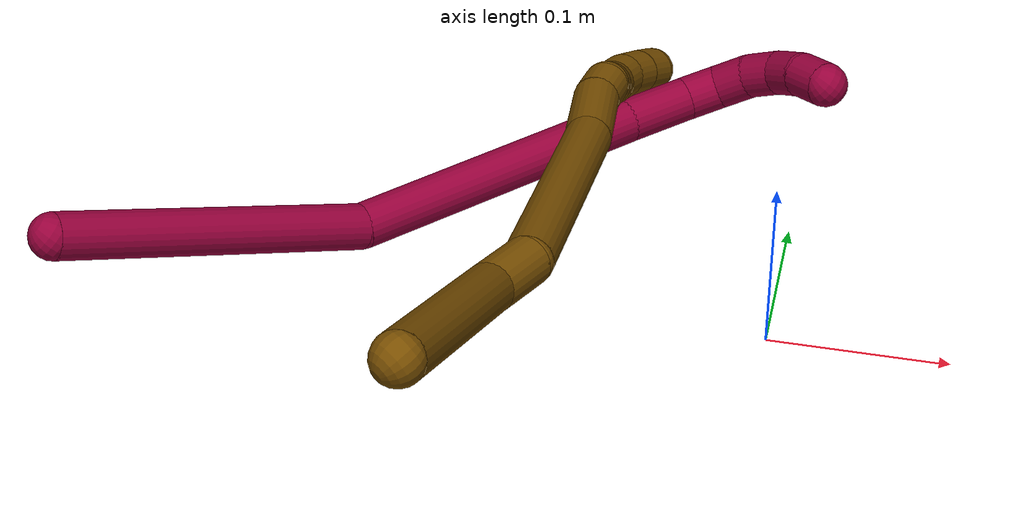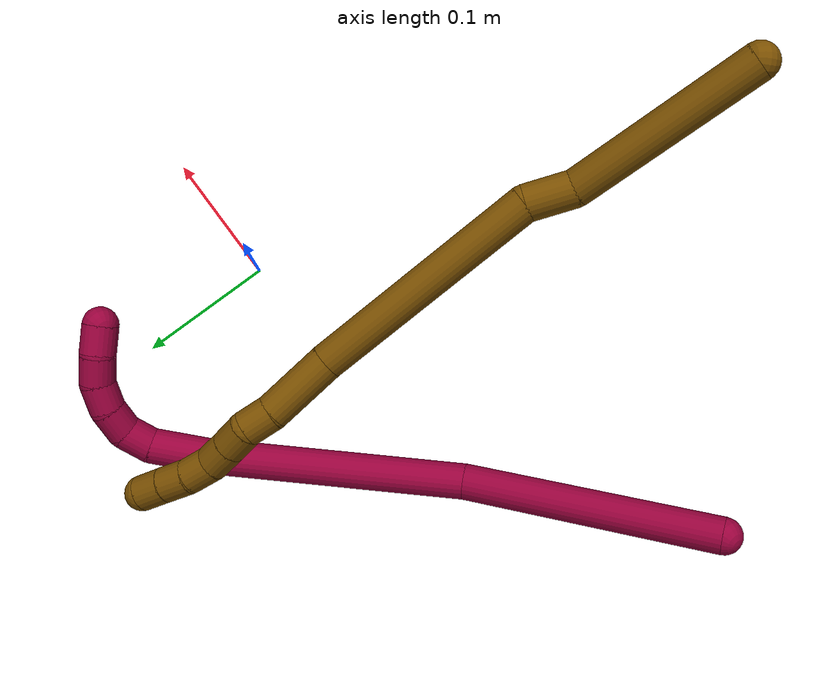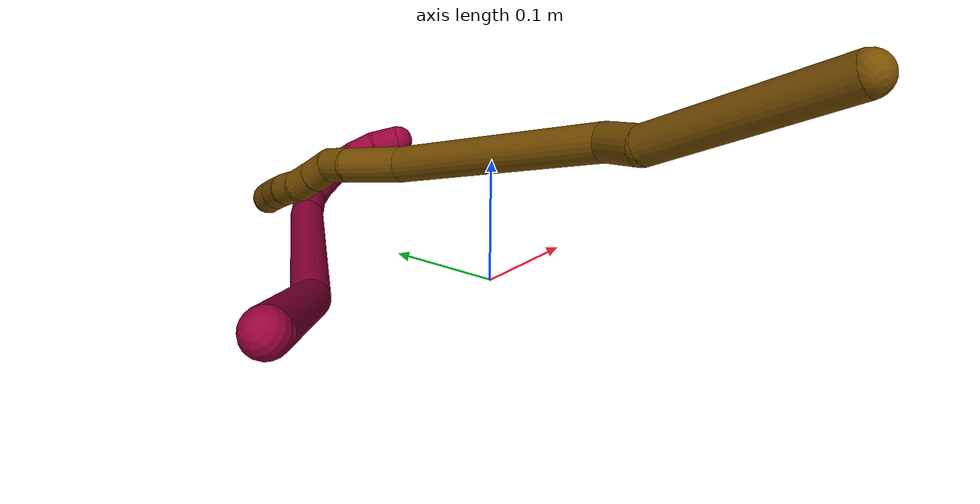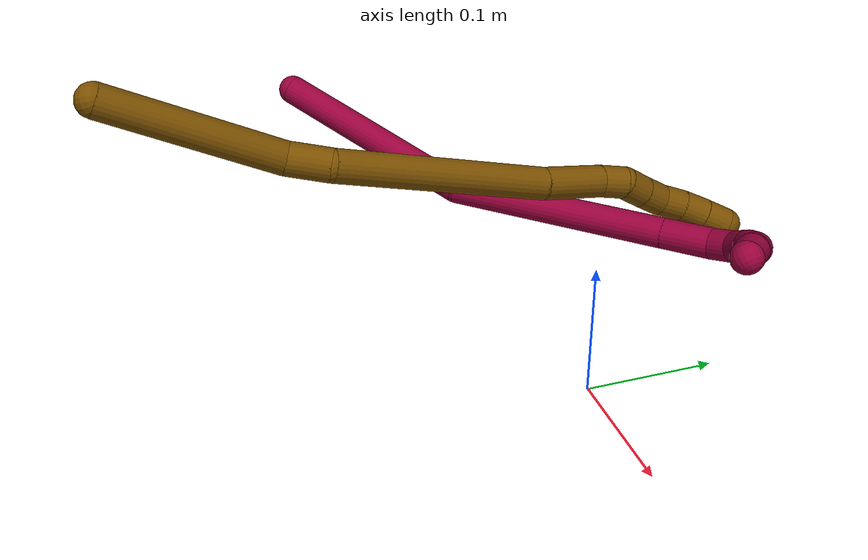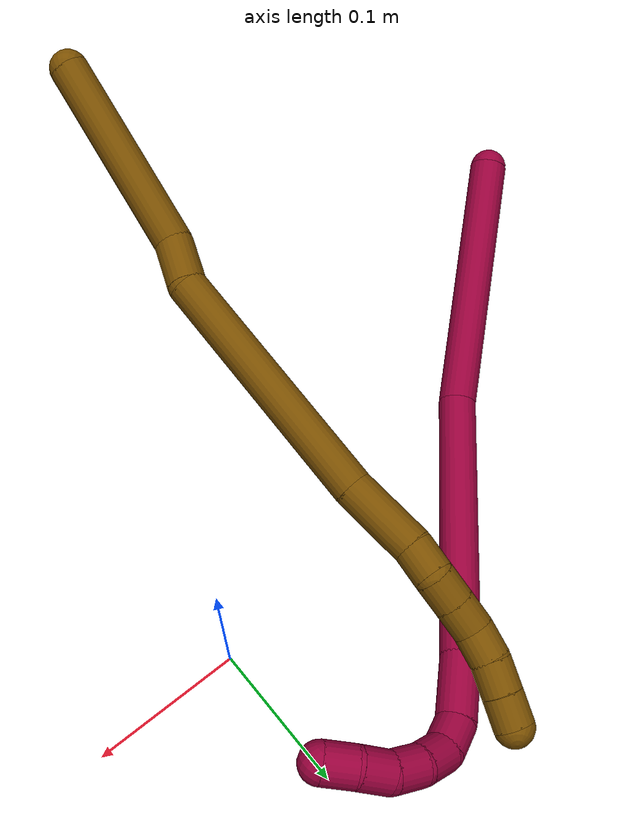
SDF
<sdf version="1.7">
 <world name="default">
  <model name="8">
   <static>0</static>
   <link name="8">
    <collision name="collision-cylinder-e_1_1_4">
     <pose>0.021893 0.045346 -0.073077 -2.58622 0.249268 -0.82819</pose>
     <geometry><cylinder><radius>0.0125</radius><length>0.177492</length></cylinder></geometry>
     <surface>
      <friction><ode><mu>1.16</mu><mu2>1.16</mu2><slip1>0</slip1><slip2>0</slip2></ode></friction>
      <contact><ode><kp>1e+06</kp><kd>1</kd><max_vel>0</max_vel><min_depth>0.001</min_depth></ode></contact>
     </surface>
    </collision>
    <visual name="visual-cylinder-e_1_1_4">
     <pose>0.021893 0.045346 -0.073077 -2.58622 0.249268 -0.82819</pose>
     <geometry><cylinder><radius>0.0125</radius><length>0.177492</length></cylinder></geometry>
     <material><ambient>0.584314 0 0.227451 1</ambient></material>
    </visual>
    <collision name="collision-cylinder-e_2_4_5">
     <pose>0.082756 0.149982 -0.201282 -2.31984 0.448616 -0.964797</pose>
     <geometry><cylinder><radius>0.0125</radius><length>0.1797</length></cylinder></geometry>
     <surface>
      <friction><ode><mu>1.16</mu><mu2>1.16</mu2><slip1>0</slip1><slip2>0</slip2></ode></friction>
      <contact><ode><kp>1e+06</kp><kd>1</kd><max_vel>0</max_vel><min_depth>0.001</min_depth></ode></contact>
     </surface>
    </collision>
    <visual name="visual-cylinder-e_2_4_5">
     <pose>0.082756 0.149982 -0.201282 -2.31984 0.448616 -0.964797</pose>
     <geometry><cylinder><radius>0.0125</radius><length>0.1797</length></cylinder></geometry>
     <material><ambient>0.584314 0 0.227451 1</ambient></material>
    </visual>
    <collision name="collision-cylinder-e_3_5_6">
     <pose>0.131998 0.22154 -0.268895 -2.36499 0.530705 -1.17277</pose>
     <geometry><cylinder><radius>0.0125</radius><length>0.040589</length></cylinder></geometry>
     <surface>
      <friction><ode><mu>1.16</mu><mu2>1.16</mu2><slip1>0</slip1><slip2>0</slip2></ode></friction>
      <contact><ode><kp>1e+06</kp><kd>1</kd><max_vel>0</max_vel><min_depth>0.001</min_depth></ode></contact>
     </surface>
    </collision>
    <visual name="visual-cylinder-e_3_5_6">
     <pose>0.131998 0.22154 -0.268895 -2.36499 0.530705 -1.17277</pose>
     <geometry><cylinder><radius>0.0125</radius><length>0.040589</length></cylinder></geometry>
     <material><ambient>0.584314 0 0.227451 1</ambient></material>
    </visual>
    <collision name="collision-cylinder-e_4_6_7">
     <pose>0.150415 0.237264 -0.286826 -2.57602 0.900976 -2.0596</pose>
     <geometry><cylinder><radius>0.0125</radius><length>0.020781</length></cylinder></geometry>
     <surface>
      <friction><ode><mu>1.16</mu><mu2>1.16</mu2><slip1>0</slip1><slip2>0</slip2></ode></friction>
      <contact><ode><kp>1e+06</kp><kd>1</kd><max_vel>0</max_vel><min_depth>0.001</min_depth></ode></contact>
     </surface>
    </collision>
    <visual name="visual-cylinder-e_4_6_7">
     <pose>0.150415 0.237264 -0.286826 -2.57602 0.900976 -2.0596</pose>
     <geometry><cylinder><radius>0.0125</radius><length>0.020781</length></cylinder></geometry>
     <material><ambient>0.584314 0 0.227451 1</ambient></material>
    </visual>
    <collision name="collision-cylinder-e_5_7_8">
     <pose>0.168508 0.239915 -0.295149 2.86839 1.27909 2.77613</pose>
     <geometry><cylinder><radius>0.0125</radius><length>0.020773</length></cylinder></geometry>
     <surface>
      <friction><ode><mu>1.16</mu><mu2>1.16</mu2><slip1>0</slip1><slip2>0</slip2></ode></friction>
      <contact><ode><kp>1e+06</kp><kd>1</kd><max_vel>0</max_vel><min_depth>0.001</min_depth></ode></contact>
     </surface>
    </collision>
    <visual name="visual-cylinder-e_5_7_8">
     <pose>0.168508 0.239915 -0.295149 2.86839 1.27909 2.77613</pose>
     <geometry><cylinder><radius>0.0125</radius><length>0.020773</length></cylinder></geometry>
     <material><ambient>0.584314 0 0.227451 1</ambient></material>
    </visual>
    <collision name="collision-cylinder-e_6_8_9">
     <pose>0.187407 0.235715 -0.301042 2.29742 1.10134 1.87866</pose>
     <geometry><cylinder><radius>0.0125</radius><length>0.020074</length></cylinder></geometry>
     <surface>
      <friction><ode><mu>1.16</mu><mu2>1.16</mu2><slip1>0</slip1><slip2>0</slip2></ode></friction>
      <contact><ode><kp>1e+06</kp><kd>1</kd><max_vel>0</max_vel><min_depth>0.001</min_depth></ode></contact>
     </surface>
    </collision>
    <visual name="visual-cylinder-e_6_8_9">
     <pose>0.187407 0.235715 -0.301042 2.29742 1.10134 1.87866</pose>
     <geometry><cylinder><radius>0.0125</radius><length>0.020074</length></cylinder></geometry>
     <material><ambient>0.584314 0 0.227451 1</ambient></material>
    </visual>
    <collision name="collision-cylinder-e_7_9_10">
     <pose>0.20406 0.226037 -0.305303 1.76623 0.876958 1.03743</pose>
     <geometry><cylinder><radius>0.0125</radius><length>0.020036</length></cylinder></geometry>
     <surface>
      <friction><ode><mu>1.16</mu><mu2>1.16</mu2><slip1>0</slip1><slip2>0</slip2></ode></friction>
      <contact><ode><kp>1e+06</kp><kd>1</kd><max_vel>0</max_vel><min_depth>0.001</min_depth></ode></contact>
     </surface>
    </collision>
    <visual name="visual-cylinder-e_7_9_10">
     <pose>0.20406 0.226037 -0.305303 1.76623 0.876958 1.03743</pose>
     <geometry><cylinder><radius>0.0125</radius><length>0.020036</length></cylinder></geometry>
     <material><ambient>0.584314 0 0.227451 1</ambient></material>
    </visual>
    <collision name="collision-cylinder-e_8_10_2">
     <pose>0.218289 0.212353 -0.309424 1.94162 0.68815 0.964981</pose>
     <geometry><cylinder><radius>0.0125</radius><length>0.020554</length></cylinder></geometry>
     <surface>
      <friction><ode><mu>1.16</mu><mu2>1.16</mu2><slip1>0</slip1><slip2>0</slip2></ode></friction>
      <contact><ode><kp>1e+06</kp><kd>1</kd><max_vel>0</max_vel><min_depth>0.001</min_depth></ode></contact>
     </surface>
    </collision>
    <visual name="visual-cylinder-e_8_10_2">
     <pose>0.218289 0.212353 -0.309424 1.94162 0.68815 0.964981</pose>
     <geometry><cylinder><radius>0.0125</radius><length>0.020554</length></cylinder></geometry>
     <material><ambient>0.584314 0 0.227451 1</ambient></material>
    </visual>
    <collision name="collision-sphere-2">
     <pose>0.224816 0.204955 -0.3123 0 -0 0</pose>
     <geometry><sphere><radius>0.0125</radius></sphere></geometry>
     <surface>
      <friction><ode><mu>1.16</mu><mu2>1.16</mu2><slip1>0</slip1><slip2>0</slip2></ode></friction>
      <contact><ode><kp>1e+06</kp><kd>1</kd><max_vel>0</max_vel><min_depth>0.001</min_depth></ode></contact>
     </surface>
    </collision>
    <visual name="visual-sphere-2">
     <pose>0.224816 0.204955 -0.3123 0 -0 0</pose>
     <geometry><sphere><radius>0.0125</radius></sphere></geometry>
     <material><ambient>0.584314 0 0.227451 1</ambient></material>
    </visual>
    <collision name="collision-sphere-10">
     <pose>0.211762 0.219752 -0.306547 0 -0 0</pose>
     <geometry><sphere><radius>0.0125</radius></sphere></geometry>
     <surface>
      <friction><ode><mu>1.16</mu><mu2>1.16</mu2><slip1>0</slip1><slip2>0</slip2></ode></friction>
      <contact><ode><kp>1e+06</kp><kd>1</kd><max_vel>0</max_vel><min_depth>0.001</min_depth></ode></contact>
     </surface>
    </collision>
    <visual name="visual-sphere-10">
     <pose>0.211762 0.219752 -0.306547 0 -0 0</pose>
     <geometry><sphere><radius>0.0125</radius></sphere></geometry>
     <material><ambient>0.584314 0 0.227451 1</ambient></material>
    </visual>
    <collision name="collision-sphere-9">
     <pose>0.196358 0.232321 -0.304059 0 -0 0</pose>
     <geometry><sphere><radius>0.0125</radius></sphere></geometry>
     <surface>
      <friction><ode><mu>1.16</mu><mu2>1.16</mu2><slip1>0</slip1><slip2>0</slip2></ode></friction>
      <contact><ode><kp>1e+06</kp><kd>1</kd><max_vel>0</max_vel><min_depth>0.001</min_depth></ode></contact>
     </surface>
    </collision>
    <visual name="visual-sphere-9">
     <pose>0.196358 0.232321 -0.304059 0 -0 0</pose>
     <geometry><sphere><radius>0.0125</radius></sphere></geometry>
     <material><ambient>0.584314 0 0.227451 1</ambient></material>
    </visual>
    <collision name="collision-sphere-4">
     <pose>0.043786 0.090692 -0.146154 0 -0 0</pose>
     <geometry><sphere><radius>0.0125</radius></sphere></geometry>
     <surface>
      <friction><ode><mu>1.16</mu><mu2>1.16</mu2><slip1>0</slip1><slip2>0</slip2></ode></friction>
      <contact><ode><kp>1e+06</kp><kd>1</kd><max_vel>0</max_vel><min_depth>0.001</min_depth></ode></contact>
     </surface>
    </collision>
    <visual name="visual-sphere-4">
     <pose>0.043786 0.090692 -0.146154 0 -0 0</pose>
     <geometry><sphere><radius>0.0125</radius></sphere></geometry>
     <material><ambient>0.584314 0 0.227451 1</ambient></material>
    </visual>
    <collision name="collision-sphere-1">
     <geometry><sphere><radius>0.0125</radius></sphere></geometry>
     <surface>
      <friction><ode><mu>1.16</mu><mu2>1.16</mu2><slip1>0</slip1><slip2>0</slip2></ode></friction>
      <contact><ode><kp>1e+06</kp><kd>1</kd><max_vel>0</max_vel><min_depth>0.001</min_depth></ode></contact>
     </surface>
    </collision>
    <visual name="visual-sphere-1">
     <geometry><sphere><radius>0.0125</radius></sphere></geometry>
     <material><ambient>0.584314 0 0.227451 1</ambient></material>
    </visual>
    <collision name="collision-sphere-8">
     <pose>0.178456 0.239109 -0.298025 0 -0 0</pose>
     <geometry><sphere><radius>0.0125</radius></sphere></geometry>
     <surface>
      <friction><ode><mu>1.16</mu><mu2>1.16</mu2><slip1>0</slip1><slip2>0</slip2></ode></friction>
      <contact><ode><kp>1e+06</kp><kd>1</kd><max_vel>0</max_vel><min_depth>0.001</min_depth></ode></contact>
     </surface>
    </collision>
    <visual name="visual-sphere-8">
     <pose>0.178456 0.239109 -0.298025 0 -0 0</pose>
     <geometry><sphere><radius>0.0125</radius></sphere></geometry>
     <material><ambient>0.584314 0 0.227451 1</ambient></material>
    </visual>
    <collision name="collision-sphere-5">
     <pose>0.121726 0.209272 -0.25641 0 -0 0</pose>
     <geometry><sphere><radius>0.0125</radius></sphere></geometry>
     <surface>
      <friction><ode><mu>1.16</mu><mu2>1.16</mu2><slip1>0</slip1><slip2>0</slip2></ode></friction>
      <contact><ode><kp>1e+06</kp><kd>1</kd><max_vel>0</max_vel><min_depth>0.001</min_depth></ode></contact>
     </surface>
    </collision>
    <visual name="visual-sphere-5">
     <pose>0.121726 0.209272 -0.25641 0 -0 0</pose>
     <geometry><sphere><radius>0.0125</radius></sphere></geometry>
     <material><ambient>0.584314 0 0.227451 1</ambient></material>
    </visual>
    <collision name="collision-sphere-6">
     <pose>0.14227 0.233807 -0.28138 0 -0 0</pose>
     <geometry><sphere><radius>0.0125</radius></sphere></geometry>
     <surface>
      <friction><ode><mu>1.16</mu><mu2>1.16</mu2><slip1>0</slip1><slip2>0</slip2></ode></friction>
      <contact><ode><kp>1e+06</kp><kd>1</kd><max_vel>0</max_vel><min_depth>0.001</min_depth></ode></contact>
     </surface>
    </collision>
    <visual name="visual-sphere-6">
     <pose>0.14227 0.233807 -0.28138 0 -0 0</pose>
     <geometry><sphere><radius>0.0125</radius></sphere></geometry>
     <material><ambient>0.584314 0 0.227451 1</ambient></material>
    </visual>
    <collision name="collision-sphere-7">
     <pose>0.15856 0.240721 -0.292273 0 -0 0</pose>
     <geometry><sphere><radius>0.0125</radius></sphere></geometry>
     <surface>
      <friction><ode><mu>1.16</mu><mu2>1.16</mu2><slip1>0</slip1><slip2>0</slip2></ode></friction>
      <contact><ode><kp>1e+06</kp><kd>1</kd><max_vel>0</max_vel><min_depth>0.001</min_depth></ode></contact>
     </surface>
    </collision>
    <visual name="visual-sphere-7">
     <pose>0.15856 0.240721 -0.292273 0 -0 0</pose>
     <geometry><sphere><radius>0.0125</radius></sphere></geometry>
     <material><ambient>0.584314 0 0.227451 1</ambient></material>
    </visual>
    <inertial>
     <pose>0.086157 0.135065 -0.181334 0 -0 0</pose>
     <mass>0.5</mass>
     <inertia>
      <ixx>-0.000123</ixx>
      <ixy>0</ixy>
      <ixz>0</ixz>
      <iyy>-0.000972</iyy>
      <iyz>0</iyz>
      <izz>-0.000931</izz>
     </inertia>
    </inertial>
   </link>
   <pose>-0.345907 -0.136646 0.117884 0.158365 -0.828615 -0.013728</pose>
  </model>
  <model name="12">
   <static>0</static>
   <link name="12">
    <collision name="collision-cylinder-e_1_1_4">
     <pose>-0.004211 0.052694 -0.039688 -2.21633 -0.063741 0.127675</pose>
     <geometry><cylinder><radius>0.0125</radius><length>0.132204</length></cylinder></geometry>
     <surface>
      <friction><ode><mu>1.16</mu><mu2>1.16</mu2><slip1>0</slip1><slip2>0</slip2></ode></friction>
      <contact><ode><kp>1e+06</kp><kd>1</kd><max_vel>0</max_vel><min_depth>0.001</min_depth></ode></contact>
     </surface>
    </collision>
    <visual name="visual-cylinder-e_1_1_4">
     <pose>-0.004211 0.052694 -0.039688 -2.21633 -0.063741 0.127675</pose>
     <geometry><cylinder><radius>0.0125</radius><length>0.132204</length></cylinder></geometry>
     <material><ambient>0.466667 0.301961 0 1</ambient></material>
    </visual>
    <collision name="collision-cylinder-e_2_4_5">
     <pose>-0.009869 0.11372 -0.09344 -2.60676 -0.088323 0.319831</pose>
     <geometry><cylinder><radius>0.0125</radius><length>0.032823</length></cylinder></geometry>
     <surface>
      <friction><ode><mu>1.16</mu><mu2>1.16</mu2><slip1>0</slip1><slip2>0</slip2></ode></friction>
      <contact><ode><kp>1e+06</kp><kd>1</kd><max_vel>0</max_vel><min_depth>0.001</min_depth></ode></contact>
     </surface>
    </collision>
    <visual name="visual-cylinder-e_2_4_5">
     <pose>-0.009869 0.11372 -0.09344 -2.60676 -0.088323 0.319831</pose>
     <geometry><cylinder><radius>0.0125</radius><length>0.032823</length></cylinder></geometry>
     <material><ambient>0.466667 0.301961 0 1</ambient></material>
    </visual>
    <collision name="collision-cylinder-e_3_5_6">
     <pose>-0.000838 0.183654 -0.160973 -2.28563 0.127756 -0.278619</pose>
     <geometry><cylinder><radius>0.0125</radius><length>0.16448</length></cylinder></geometry>
     <surface>
      <friction><ode><mu>1.16</mu><mu2>1.16</mu2><slip1>0</slip1><slip2>0</slip2></ode></friction>
      <contact><ode><kp>1e+06</kp><kd>1</kd><max_vel>0</max_vel><min_depth>0.001</min_depth></ode></contact>
     </surface>
    </collision>
    <visual name="visual-cylinder-e_3_5_6">
     <pose>-0.000838 0.183654 -0.160973 -2.28563 0.127756 -0.278619</pose>
     <geometry><cylinder><radius>0.0125</radius><length>0.16448</length></cylinder></geometry>
     <material><ambient>0.466667 0.301961 0 1</ambient></material>
    </visual>
    <collision name="collision-cylinder-e_4_6_7">
     <pose>0.015732 0.263328 -0.230295 -2.29091 0.248179 -0.537377</pose>
     <geometry><cylinder><radius>0.0125</radius><length>0.049601</length></cylinder></geometry>
     <surface>
      <friction><ode><mu>1.16</mu><mu2>1.16</mu2><slip1>0</slip1><slip2>0</slip2></ode></friction>
      <contact><ode><kp>1e+06</kp><kd>1</kd><max_vel>0</max_vel><min_depth>0.001</min_depth></ode></contact>
     </surface>
    </collision>
    <visual name="visual-cylinder-e_4_6_7">
     <pose>0.015732 0.263328 -0.230295 -2.29091 0.248179 -0.537377</pose>
     <geometry><cylinder><radius>0.0125</radius><length>0.049601</length></cylinder></geometry>
     <material><ambient>0.466667 0.301961 0 1</ambient></material>
    </visual>
    <collision name="collision-cylinder-e_5_7_8">
     <pose>0.022916 0.288407 -0.253763 -2.39773 0.1052 -0.268312</pose>
     <geometry><cylinder><radius>0.0125</radius><length>0.020811</length></cylinder></geometry>
     <surface>
      <friction><ode><mu>1.16</mu><mu2>1.16</mu2><slip1>0</slip1><slip2>0</slip2></ode></friction>
      <contact><ode><kp>1e+06</kp><kd>1</kd><max_vel>0</max_vel><min_depth>0.001</min_depth></ode></contact>
     </surface>
    </collision>
    <visual name="visual-cylinder-e_5_7_8">
     <pose>0.022916 0.288407 -0.253763 -2.39773 0.1052 -0.268312</pose>
     <geometry><cylinder><radius>0.0125</radius><length>0.020811</length></cylinder></geometry>
     <material><ambient>0.466667 0.301961 0 1</ambient></material>
    </visual>
    <collision name="collision-cylinder-e_6_8_9">
     <pose>0.023377 0.304505 -0.265525 -1.99877 -0.063192 0.098237</pose>
     <geometry><cylinder><radius>0.0125</radius><length>0.020024</length></cylinder></geometry>
     <surface>
      <friction><ode><mu>1.16</mu><mu2>1.16</mu2><slip1>0</slip1><slip2>0</slip2></ode></friction>
      <contact><ode><kp>1e+06</kp><kd>1</kd><max_vel>0</max_vel><min_depth>0.001</min_depth></ode></contact>
     </surface>
    </collision>
    <visual name="visual-cylinder-e_6_8_9">
     <pose>0.023377 0.304505 -0.265525 -1.99877 -0.063192 0.098237</pose>
     <geometry><cylinder><radius>0.0125</radius><length>0.020024</length></cylinder></geometry>
     <material><ambient>0.466667 0.301961 0 1</ambient></material>
    </visual>
    <collision name="collision-cylinder-e_7_9_10">
     <pose>0.022175 0.322544 -0.274146 -2.03442 -0.0569 0.092023</pose>
     <geometry><cylinder><radius>0.0125</radius><length>0.020041</length></cylinder></geometry>
     <surface>
      <friction><ode><mu>1.16</mu><mu2>1.16</mu2><slip1>0</slip1><slip2>0</slip2></ode></friction>
      <contact><ode><kp>1e+06</kp><kd>1</kd><max_vel>0</max_vel><min_depth>0.001</min_depth></ode></contact>
     </surface>
    </collision>
    <visual name="visual-cylinder-e_7_9_10">
     <pose>0.022175 0.322544 -0.274146 -2.03442 -0.0569 0.092023</pose>
     <geometry><cylinder><radius>0.0125</radius><length>0.020041</length></cylinder></geometry>
     <material><ambient>0.466667 0.301961 0 1</ambient></material>
    </visual>
    <collision name="collision-cylinder-e_8_10_11">
     <pose>0.021007 0.338852 -0.285375 -2.3134 -0.059786 0.13586</pose>
     <geometry><cylinder><radius>0.0125</radius><length>0.020017</length></cylinder></geometry>
     <surface>
      <friction><ode><mu>1.16</mu><mu2>1.16</mu2><slip1>0</slip1><slip2>0</slip2></ode></friction>
      <contact><ode><kp>1e+06</kp><kd>1</kd><max_vel>0</max_vel><min_depth>0.001</min_depth></ode></contact>
     </surface>
    </collision>
    <visual name="visual-cylinder-e_8_10_11">
     <pose>0.021007 0.338852 -0.285375 -2.3134 -0.059786 0.13586</pose>
     <geometry><cylinder><radius>0.0125</radius><length>0.020017</length></cylinder></geometry>
     <material><ambient>0.466667 0.301961 0 1</ambient></material>
    </visual>
    <collision name="collision-cylinder-e_9_11_12">
     <pose>0.018282 0.352991 -0.299168 -2.37484 -0.214272 0.52117</pose>
     <geometry><cylinder><radius>0.0125</radius><length>0.02</length></cylinder></geometry>
     <surface>
      <friction><ode><mu>1.16</mu><mu2>1.16</mu2><slip1>0</slip1><slip2>0</slip2></ode></friction>
      <contact><ode><kp>1e+06</kp><kd>1</kd><max_vel>0</max_vel><min_depth>0.001</min_depth></ode></contact>
     </surface>
    </collision>
    <visual name="visual-cylinder-e_9_11_12">
     <pose>0.018282 0.352991 -0.299168 -2.37484 -0.214272 0.52117</pose>
     <geometry><cylinder><radius>0.0125</radius><length>0.02</length></cylinder></geometry>
     <material><ambient>0.466667 0.301961 0 1</ambient></material>
    </visual>
    <collision name="collision-cylinder-e_10_12_2">
     <pose>0.013838 0.366752 -0.312979 -2.34109 -0.233937 0.541808</pose>
     <geometry><cylinder><radius>0.0125</radius><length>0.02</length></cylinder></geometry>
     <surface>
      <friction><ode><mu>1.16</mu><mu2>1.16</mu2><slip1>0</slip1><slip2>0</slip2></ode></friction>
      <contact><ode><kp>1e+06</kp><kd>1</kd><max_vel>0</max_vel><min_depth>0.001</min_depth></ode></contact>
     </surface>
    </collision>
    <visual name="visual-cylinder-e_10_12_2">
     <pose>0.013838 0.366752 -0.312979 -2.34109 -0.233937 0.541808</pose>
     <geometry><cylinder><radius>0.0125</radius><length>0.02</length></cylinder></geometry>
     <material><ambient>0.466667 0.301961 0 1</ambient></material>
    </visual>
    <collision name="collision-sphere-2">
     <pose>0.01152 0.373733 -0.319752 0 -0 0</pose>
     <geometry><sphere><radius>0.0125</radius></sphere></geometry>
     <surface>
      <friction><ode><mu>1.16</mu><mu2>1.16</mu2><slip1>0</slip1><slip2>0</slip2></ode></friction>
      <contact><ode><kp>1e+06</kp><kd>1</kd><max_vel>0</max_vel><min_depth>0.001</min_depth></ode></contact>
     </surface>
    </collision>
    <visual name="visual-sphere-2">
     <pose>0.01152 0.373733 -0.319752 0 -0 0</pose>
     <geometry><sphere><radius>0.0125</radius></sphere></geometry>
     <material><ambient>0.466667 0.301961 0 1</ambient></material>
    </visual>
    <collision name="collision-sphere-12">
     <pose>0.016156 0.35977 -0.306205 0 -0 0</pose>
     <geometry><sphere><radius>0.0125</radius></sphere></geometry>
     <surface>
      <friction><ode><mu>1.16</mu><mu2>1.16</mu2><slip1>0</slip1><slip2>0</slip2></ode></friction>
      <contact><ode><kp>1e+06</kp><kd>1</kd><max_vel>0</max_vel><min_depth>0.001</min_depth></ode></contact>
     </surface>
    </collision>
    <visual name="visual-sphere-12">
     <pose>0.016156 0.35977 -0.306205 0 -0 0</pose>
     <geometry><sphere><radius>0.0125</radius></sphere></geometry>
     <material><ambient>0.466667 0.301961 0 1</ambient></material>
    </visual>
    <collision name="collision-sphere-11">
     <pose>0.020409 0.346212 -0.292131 0 -0 0</pose>
     <geometry><sphere><radius>0.0125</radius></sphere></geometry>
     <surface>
      <friction><ode><mu>1.16</mu><mu2>1.16</mu2><slip1>0</slip1><slip2>0</slip2></ode></friction>
      <contact><ode><kp>1e+06</kp><kd>1</kd><max_vel>0</max_vel><min_depth>0.001</min_depth></ode></contact>
     </surface>
    </collision>
    <visual name="visual-sphere-11">
     <pose>0.020409 0.346212 -0.292131 0 -0 0</pose>
     <geometry><sphere><radius>0.0125</radius></sphere></geometry>
     <material><ambient>0.466667 0.301961 0 1</ambient></material>
    </visual>
    <collision name="collision-sphere-10">
     <pose>0.021605 0.331492 -0.27862 0 -0 0</pose>
     <geometry><sphere><radius>0.0125</radius></sphere></geometry>
     <surface>
      <friction><ode><mu>1.16</mu><mu2>1.16</mu2><slip1>0</slip1><slip2>0</slip2></ode></friction>
      <contact><ode><kp>1e+06</kp><kd>1</kd><max_vel>0</max_vel><min_depth>0.001</min_depth></ode></contact>
     </surface>
    </collision>
    <visual name="visual-sphere-10">
     <pose>0.021605 0.331492 -0.27862 0 -0 0</pose>
     <geometry><sphere><radius>0.0125</radius></sphere></geometry>
     <material><ambient>0.466667 0.301961 0 1</ambient></material>
    </visual>
    <collision name="collision-sphere-9">
     <pose>0.022744 0.313596 -0.269672 0 -0 0</pose>
     <geometry><sphere><radius>0.0125</radius></sphere></geometry>
     <surface>
      <friction><ode><mu>1.16</mu><mu2>1.16</mu2><slip1>0</slip1><slip2>0</slip2></ode></friction>
      <contact><ode><kp>1e+06</kp><kd>1</kd><max_vel>0</max_vel><min_depth>0.001</min_depth></ode></contact>
     </surface>
    </collision>
    <visual name="visual-sphere-9">
     <pose>0.022744 0.313596 -0.269672 0 -0 0</pose>
     <geometry><sphere><radius>0.0125</radius></sphere></geometry>
     <material><ambient>0.466667 0.301961 0 1</ambient></material>
    </visual>
    <collision name="collision-sphere-4">
     <pose>-0.008421 0.105388 -0.079375 0 -0 0</pose>
     <geometry><sphere><radius>0.0125</radius></sphere></geometry>
     <surface>
      <friction><ode><mu>1.16</mu><mu2>1.16</mu2><slip1>0</slip1><slip2>0</slip2></ode></friction>
      <contact><ode><kp>1e+06</kp><kd>1</kd><max_vel>0</max_vel><min_depth>0.001</min_depth></ode></contact>
     </surface>
    </collision>
    <visual name="visual-sphere-4">
     <pose>-0.008421 0.105388 -0.079375 0 -0 0</pose>
     <geometry><sphere><radius>0.0125</radius></sphere></geometry>
     <material><ambient>0.466667 0.301961 0 1</ambient></material>
    </visual>
    <collision name="collision-sphere-1">
     <geometry><sphere><radius>0.0125</radius></sphere></geometry>
     <surface>
      <friction><ode><mu>1.16</mu><mu2>1.16</mu2><slip1>0</slip1><slip2>0</slip2></ode></friction>
      <contact><ode><kp>1e+06</kp><kd>1</kd><max_vel>0</max_vel><min_depth>0.001</min_depth></ode></contact>
     </surface>
    </collision>
    <visual name="visual-sphere-1">
     <geometry><sphere><radius>0.0125</radius></sphere></geometry>
     <material><ambient>0.466667 0.301961 0 1</ambient></material>
    </visual>
    <collision name="collision-sphere-8">
     <pose>0.024009 0.295414 -0.261378 0 -0 0</pose>
     <geometry><sphere><radius>0.0125</radius></sphere></geometry>
     <surface>
      <friction><ode><mu>1.16</mu><mu2>1.16</mu2><slip1>0</slip1><slip2>0</slip2></ode></friction>
      <contact><ode><kp>1e+06</kp><kd>1</kd><max_vel>0</max_vel><min_depth>0.001</min_depth></ode></contact>
     </surface>
    </collision>
    <visual name="visual-sphere-8">
     <pose>0.024009 0.295414 -0.261378 0 -0 0</pose>
     <geometry><sphere><radius>0.0125</radius></sphere></geometry>
     <material><ambient>0.466667 0.301961 0 1</ambient></material>
    </visual>
    <collision name="collision-sphere-5">
     <pose>-0.011316 0.122052 -0.107505 0 -0 0</pose>
     <geometry><sphere><radius>0.0125</radius></sphere></geometry>
     <surface>
      <friction><ode><mu>1.16</mu><mu2>1.16</mu2><slip1>0</slip1><slip2>0</slip2></ode></friction>
      <contact><ode><kp>1e+06</kp><kd>1</kd><max_vel>0</max_vel><min_depth>0.001</min_depth></ode></contact>
     </surface>
    </collision>
    <visual name="visual-sphere-5">
     <pose>-0.011316 0.122052 -0.107505 0 -0 0</pose>
     <geometry><sphere><radius>0.0125</radius></sphere></geometry>
     <material><ambient>0.466667 0.301961 0 1</ambient></material>
    </visual>
    <collision name="collision-sphere-6">
     <pose>0.00964 0.245256 -0.214441 0 -0 0</pose>
     <geometry><sphere><radius>0.0125</radius></sphere></geometry>
     <surface>
      <friction><ode><mu>1.16</mu><mu2>1.16</mu2><slip1>0</slip1><slip2>0</slip2></ode></friction>
      <contact><ode><kp>1e+06</kp><kd>1</kd><max_vel>0</max_vel><min_depth>0.001</min_depth></ode></contact>
     </surface>
    </collision>
    <visual name="visual-sphere-6">
     <pose>0.00964 0.245256 -0.214441 0 -0 0</pose>
     <geometry><sphere><radius>0.0125</radius></sphere></geometry>
     <material><ambient>0.466667 0.301961 0 1</ambient></material>
    </visual>
    <collision name="collision-sphere-7">
     <pose>0.021824 0.2814 -0.246149 0 -0 0</pose>
     <geometry><sphere><radius>0.0125</radius></sphere></geometry>
     <surface>
      <friction><ode><mu>1.16</mu><mu2>1.16</mu2><slip1>0</slip1><slip2>0</slip2></ode></friction>
      <contact><ode><kp>1e+06</kp><kd>1</kd><max_vel>0</max_vel><min_depth>0.001</min_depth></ode></contact>
     </surface>
    </collision>
    <visual name="visual-sphere-7">
     <pose>0.021824 0.2814 -0.246149 0 -0 0</pose>
     <geometry><sphere><radius>0.0125</radius></sphere></geometry>
     <material><ambient>0.466667 0.301961 0 1</ambient></material>
    </visual>
    <inertial>
     <pose>0.004428 0.187417 -0.160521 0 -0 0</pose>
     <mass>0.5</mass>
     <inertia>
      <ixx>0.000498</ixx>
      <ixy>0</ixy>
      <ixz>0</ixz>
      <iyy>-0.00041</iyy>
      <iyz>0</iyz>
      <izz>-0.00052</izz>
     </inertia>
    </inertial>
   </link>
   <pose>-0.122252 -0.307372 0.217075 -1.98996 -0.691976 2.76397</pose>
  </model>
 </world>
</sdf>
